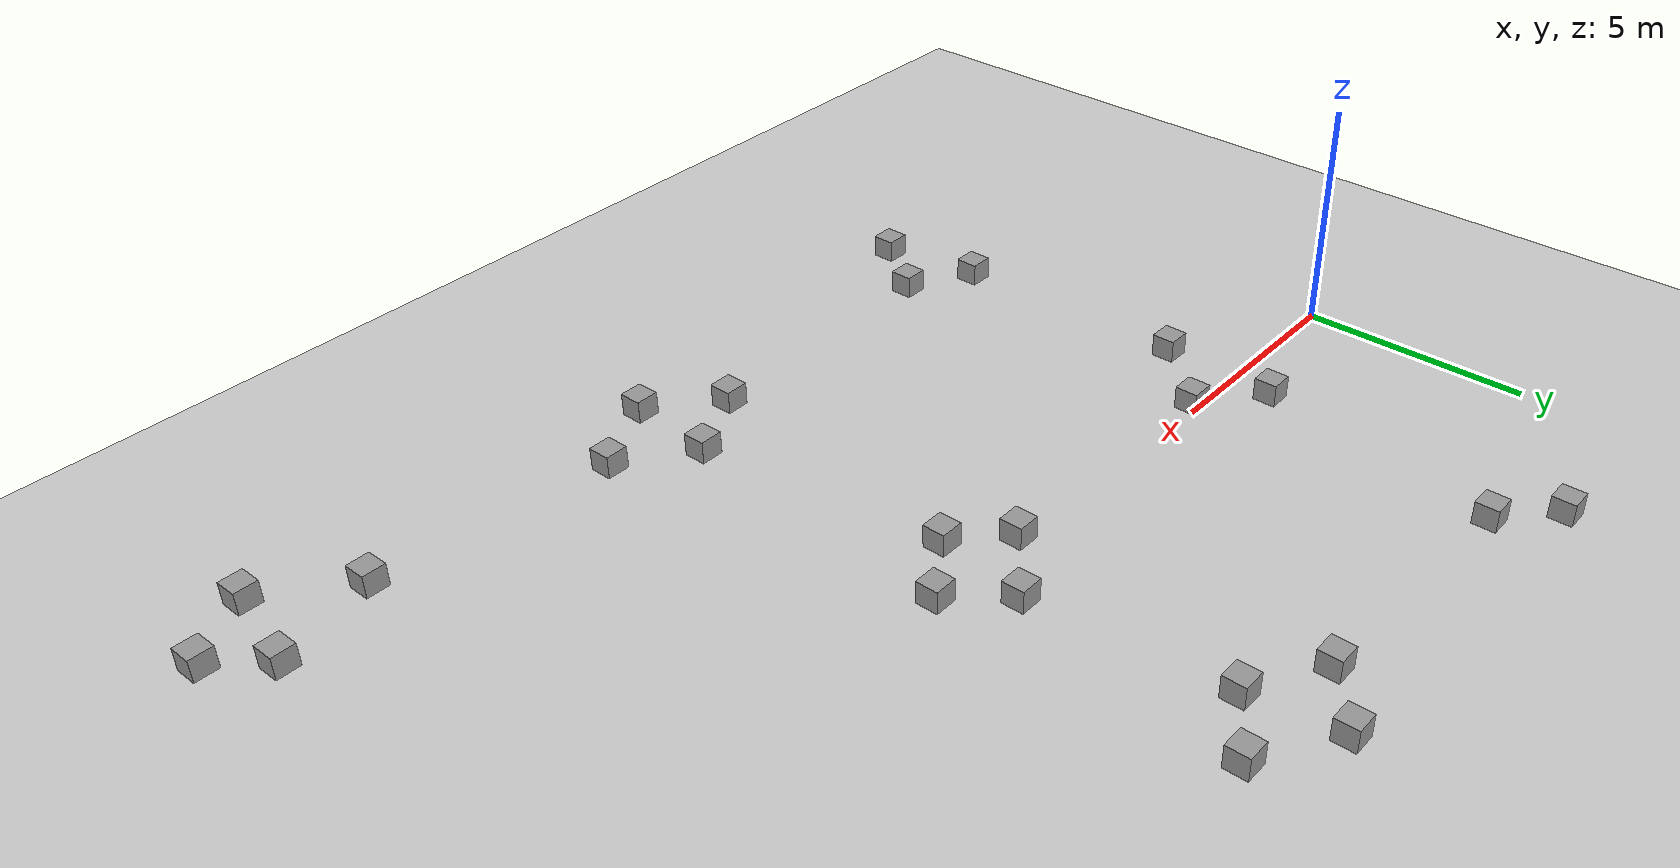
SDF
<sdf version="1.6">
 <world name="default">
  <model name="ground_plane">
   <static>1</static>
   <link name="link">
    <collision name="collision">
     <geometry><plane><normal>0 0 1</normal><size>100 100</size></plane></geometry>
     <surface>
      <contact><collide_bitmask>65535</collide_bitmask></contact>
      <friction><ode><mu>100</mu><mu2>50</mu2></ode></friction>
     </surface>
    </collision>
    <visual name="visual">
     <cast_shadows>0</cast_shadows>
     <geometry><plane><normal>0 0 1</normal><size>100 100</size></plane></geometry>
     <material>
      <script><uri>file://media/materials/scripts/gazebo.material</uri><name>Gazebo/Grey</name></script>
     </material>
    </visual>
   </link>
  </model>
  <model name="Untitled">
   <link name="link_0">
    <inertial>
     <mass>1</mass>
     <inertia>
      <ixx>0.166667</ixx>
      <ixy>0</ixy>
      <ixz>0</ixz>
      <iyy>0.166667</iyy>
      <iyz>0</iyz>
      <izz>0.166667</izz>
     </inertia>
    </inertial>
    <visual name="visual">
     <geometry><box><size>0.5 0.5 0.5</size></box></geometry>
     <material>
      <lighting>1</lighting>
      <script><uri>file://media/materials/scripts/gazebo.material</uri><name>Gazebo/Grey</name></script>
      <shader type="vertex"><normal_map>__default__</normal_map></shader>
      <ambient>0 0 0 1</ambient>
      <diffuse>0 0 0 1</diffuse>
      <specular>0 0 0 1</specular>
      <emissive>0 0 0 1</emissive>
     </material>
    </visual>
    <collision name="collision">
     <geometry><box><size>0.5 0.5 0.5</size></box></geometry>
     <surface>
      <friction>
       <ode><mu>1</mu><mu2>1</mu2><fdir1>0 0 0</fdir1><slip1>0</slip1><slip2>0</slip2></ode>
       <torsional>
        <coefficient>1</coefficient>
        <patch_radius>0</patch_radius>
        <surface_radius>0</surface_radius>
        <use_patch_radius>1</use_patch_radius>
        <ode><slip>0</slip></ode>
       </torsional>
      </friction>
      <bounce><restitution_coefficient>0</restitution_coefficient><threshold>1e+06</threshold></bounce>
      <contact>
       <collide_without_contact>0</collide_without_contact>
       <collide_without_contact_bitmask>1</collide_without_contact_bitmask>
       <collide_bitmask>1</collide_bitmask>
       <ode>
        <soft_cfm>0</soft_cfm>
        <soft_erp>0.2</soft_erp>
        <kp>1e+13</kp>
        <kd>1</kd>
        <max_vel>0.01</max_vel>
        <min_depth>0</min_depth>
       </ode>
       <bullet>
        <split_impulse>1</split_impulse>
        <split_impulse_penetration_threshold>-0.01</split_impulse_penetration_threshold>
        <soft_cfm>0</soft_cfm>
        <soft_erp>0.2</soft_erp>
        <kp>1e+13</kp>
        <kd>1</kd>
       </bullet>
      </contact>
     </surface>
    </collision>
   </link>
   <static>0</static>
   <pose>10.8528 -0.084213 0.5 0 -0 0</pose>
  </model>
  <model name="Untitled_clone">
   <link name="link_0">
    <inertial>
     <mass>1</mass>
     <inertia>
      <ixx>0.166667</ixx>
      <ixy>0</ixy>
      <ixz>0</ixz>
      <iyy>0.166667</iyy>
      <iyz>0</iyz>
      <izz>0.166667</izz>
     </inertia>
    </inertial>
    <visual name="visual">
     <geometry><box><size>0.5 0.5 0.5</size></box></geometry>
     <material>
      <lighting>1</lighting>
      <script><uri>file://media/materials/scripts/gazebo.material</uri><name>Gazebo/Grey</name></script>
      <shader type="vertex"><normal_map>__default__</normal_map></shader>
      <ambient>0 0 0 1</ambient>
      <diffuse>0 0 0 1</diffuse>
      <specular>0 0 0 1</specular>
      <emissive>0 0 0 1</emissive>
     </material>
    </visual>
    <collision name="collision">
     <geometry><box><size>0.5 0.5 0.5</size></box></geometry>
     <surface>
      <friction>
       <ode><mu>1</mu><mu2>1</mu2><fdir1>0 0 0</fdir1><slip1>0</slip1><slip2>0</slip2></ode>
       <torsional>
        <coefficient>1</coefficient>
        <patch_radius>0</patch_radius>
        <surface_radius>0</surface_radius>
        <use_patch_radius>1</use_patch_radius>
        <ode><slip>0</slip></ode>
       </torsional>
      </friction>
      <bounce><restitution_coefficient>0</restitution_coefficient><threshold>1e+06</threshold></bounce>
      <contact>
       <collide_without_contact>0</collide_without_contact>
       <collide_without_contact_bitmask>1</collide_without_contact_bitmask>
       <collide_bitmask>1</collide_bitmask>
       <ode>
        <soft_cfm>0</soft_cfm>
        <soft_erp>0.2</soft_erp>
        <kp>1e+13</kp>
        <kd>1</kd>
        <max_vel>0.01</max_vel>
        <min_depth>0</min_depth>
       </ode>
       <bullet>
        <split_impulse>1</split_impulse>
        <split_impulse_penetration_threshold>-0.01</split_impulse_penetration_threshold>
        <soft_cfm>0</soft_cfm>
        <soft_erp>0.2</soft_erp>
        <kp>1e+13</kp>
        <kd>1</kd>
       </bullet>
      </contact>
     </surface>
    </collision>
   </link>
   <static>0</static>
   <pose>13.1905 -0.141175 0.5 0 -0 0</pose>
  </model>
  <model name="Untitled_clone_0">
   <link name="link_0">
    <inertial>
     <mass>1</mass>
     <inertia>
      <ixx>0.166667</ixx>
      <ixy>0</ixy>
      <ixz>0</ixz>
      <iyy>0.166667</iyy>
      <iyz>0</iyz>
      <izz>0.166667</izz>
     </inertia>
    </inertial>
    <visual name="visual">
     <geometry><box><size>0.5 0.5 0.5</size></box></geometry>
     <material>
      <lighting>1</lighting>
      <script><uri>file://media/materials/scripts/gazebo.material</uri><name>Gazebo/Grey</name></script>
      <shader type="vertex"><normal_map>__default__</normal_map></shader>
      <ambient>0 0 0 1</ambient>
      <diffuse>0 0 0 1</diffuse>
      <specular>0 0 0 1</specular>
      <emissive>0 0 0 1</emissive>
     </material>
    </visual>
    <collision name="collision">
     <geometry><box><size>0.5 0.5 0.5</size></box></geometry>
     <surface>
      <friction>
       <ode><mu>1</mu><mu2>1</mu2><fdir1>0 0 0</fdir1><slip1>0</slip1><slip2>0</slip2></ode>
       <torsional>
        <coefficient>1</coefficient>
        <patch_radius>0</patch_radius>
        <surface_radius>0</surface_radius>
        <use_patch_radius>1</use_patch_radius>
        <ode><slip>0</slip></ode>
       </torsional>
      </friction>
      <bounce><restitution_coefficient>0</restitution_coefficient><threshold>1e+06</threshold></bounce>
      <contact>
       <collide_without_contact>0</collide_without_contact>
       <collide_without_contact_bitmask>1</collide_without_contact_bitmask>
       <collide_bitmask>1</collide_bitmask>
       <ode>
        <soft_cfm>0</soft_cfm>
        <soft_erp>0.2</soft_erp>
        <kp>1e+13</kp>
        <kd>1</kd>
        <max_vel>0.01</max_vel>
        <min_depth>0</min_depth>
       </ode>
       <bullet>
        <split_impulse>1</split_impulse>
        <split_impulse_penetration_threshold>-0.01</split_impulse_penetration_threshold>
        <soft_cfm>0</soft_cfm>
        <soft_erp>0.2</soft_erp>
        <kp>1e+13</kp>
        <kd>1</kd>
       </bullet>
      </contact>
     </surface>
    </collision>
   </link>
   <static>0</static>
   <pose>10.2627 6.17219 0.5 0 -0 0</pose>
  </model>
  <model name="Untitled_clone_1">
   <link name="link_0">
    <inertial>
     <mass>1</mass>
     <inertia>
      <ixx>0.166667</ixx>
      <ixy>0</ixy>
      <ixz>0</ixz>
      <iyy>0.166667</iyy>
      <iyz>0</iyz>
      <izz>0.166667</izz>
     </inertia>
    </inertial>
    <visual name="visual">
     <geometry><box><size>0.5 0.5 0.5</size></box></geometry>
     <material>
      <lighting>1</lighting>
      <script><uri>file://media/materials/scripts/gazebo.material</uri><name>Gazebo/Grey</name></script>
      <shader type="vertex"><normal_map>__default__</normal_map></shader>
      <ambient>0 0 0 1</ambient>
      <diffuse>0 0 0 1</diffuse>
      <specular>0 0 0 1</specular>
      <emissive>0 0 0 1</emissive>
     </material>
    </visual>
    <collision name="collision">
     <geometry><box><size>0.5 0.5 0.5</size></box></geometry>
     <surface>
      <friction>
       <ode><mu>1</mu><mu2>1</mu2><fdir1>0 0 0</fdir1><slip1>0</slip1><slip2>0</slip2></ode>
       <torsional>
        <coefficient>1</coefficient>
        <patch_radius>0</patch_radius>
        <surface_radius>0</surface_radius>
        <use_patch_radius>1</use_patch_radius>
        <ode><slip>0</slip></ode>
       </torsional>
      </friction>
      <bounce><restitution_coefficient>0</restitution_coefficient><threshold>1e+06</threshold></bounce>
      <contact>
       <collide_without_contact>0</collide_without_contact>
       <collide_without_contact_bitmask>1</collide_without_contact_bitmask>
       <collide_bitmask>1</collide_bitmask>
       <ode>
        <soft_cfm>0</soft_cfm>
        <soft_erp>0.2</soft_erp>
        <kp>1e+13</kp>
        <kd>1</kd>
        <max_vel>0.01</max_vel>
        <min_depth>0</min_depth>
       </ode>
       <bullet>
        <split_impulse>1</split_impulse>
        <split_impulse_penetration_threshold>-0.01</split_impulse_penetration_threshold>
        <soft_cfm>0</soft_cfm>
        <soft_erp>0.2</soft_erp>
        <kp>1e+13</kp>
        <kd>1</kd>
       </bullet>
      </contact>
     </surface>
    </collision>
   </link>
   <static>0</static>
   <pose>13.128 6.13727 0.5 0 -0 0</pose>
  </model>
  <model name="Untitled_clone_2">
   <link name="link_0">
    <inertial>
     <mass>1</mass>
     <inertia>
      <ixx>0.166667</ixx>
      <ixy>0</ixy>
      <ixz>0</ixz>
      <iyy>0.166667</iyy>
      <iyz>0</iyz>
      <izz>0.166667</izz>
     </inertia>
    </inertial>
    <visual name="visual">
     <geometry><box><size>0.5 0.5 0.5</size></box></geometry>
     <material>
      <lighting>1</lighting>
      <script><uri>file://media/materials/scripts/gazebo.material</uri><name>Gazebo/Grey</name></script>
      <shader type="vertex"><normal_map>__default__</normal_map></shader>
      <ambient>0 0 0 1</ambient>
      <diffuse>0 0 0 1</diffuse>
      <specular>0 0 0 1</specular>
      <emissive>0 0 0 1</emissive>
     </material>
    </visual>
    <collision name="collision">
     <geometry><box><size>0.5 0.5 0.5</size></box></geometry>
     <surface>
      <friction>
       <ode><mu>1</mu><mu2>1</mu2><fdir1>0 0 0</fdir1><slip1>0</slip1><slip2>0</slip2></ode>
       <torsional>
        <coefficient>1</coefficient>
        <patch_radius>0</patch_radius>
        <surface_radius>0</surface_radius>
        <use_patch_radius>1</use_patch_radius>
        <ode><slip>0</slip></ode>
       </torsional>
      </friction>
      <bounce><restitution_coefficient>0</restitution_coefficient><threshold>1e+06</threshold></bounce>
      <contact>
       <collide_without_contact>0</collide_without_contact>
       <collide_without_contact_bitmask>1</collide_without_contact_bitmask>
       <collide_bitmask>1</collide_bitmask>
       <ode>
        <soft_cfm>0</soft_cfm>
        <soft_erp>0.2</soft_erp>
        <kp>1e+13</kp>
        <kd>1</kd>
        <max_vel>0.01</max_vel>
        <min_depth>0</min_depth>
       </ode>
       <bullet>
        <split_impulse>1</split_impulse>
        <split_impulse_penetration_threshold>-0.01</split_impulse_penetration_threshold>
        <soft_cfm>0</soft_cfm>
        <soft_erp>0.2</soft_erp>
        <kp>1e+13</kp>
        <kd>1</kd>
       </bullet>
      </contact>
     </surface>
    </collision>
   </link>
   <static>0</static>
   <pose>11.8135 5.26658 0.5 0 -0 0</pose>
  </model>
  <model name="Untitled_clone_3">
   <link name="link_0">
    <inertial>
     <mass>1</mass>
     <inertia>
      <ixx>0.166667</ixx>
      <ixy>0</ixy>
      <ixz>0</ixz>
      <iyy>0.166667</iyy>
      <iyz>0</iyz>
      <izz>0.166667</izz>
     </inertia>
    </inertial>
    <visual name="visual">
     <geometry><box><size>0.5 0.5 0.5</size></box></geometry>
     <material>
      <lighting>1</lighting>
      <script><uri>file://media/materials/scripts/gazebo.material</uri><name>Gazebo/Grey</name></script>
      <shader type="vertex"><normal_map>__default__</normal_map></shader>
      <ambient>0 0 0 1</ambient>
      <diffuse>0 0 0 1</diffuse>
      <specular>0 0 0 1</specular>
      <emissive>0 0 0 1</emissive>
     </material>
    </visual>
    <collision name="collision">
     <geometry><box><size>0.5 0.5 0.5</size></box></geometry>
     <surface>
      <friction>
       <ode><mu>1</mu><mu2>1</mu2><fdir1>0 0 0</fdir1><slip1>0</slip1><slip2>0</slip2></ode>
       <torsional>
        <coefficient>1</coefficient>
        <patch_radius>0</patch_radius>
        <surface_radius>0</surface_radius>
        <use_patch_radius>1</use_patch_radius>
        <ode><slip>0</slip></ode>
       </torsional>
      </friction>
      <bounce><restitution_coefficient>0</restitution_coefficient><threshold>1e+06</threshold></bounce>
      <contact>
       <collide_without_contact>0</collide_without_contact>
       <collide_without_contact_bitmask>1</collide_without_contact_bitmask>
       <collide_bitmask>1</collide_bitmask>
       <ode>
        <soft_cfm>0</soft_cfm>
        <soft_erp>0.2</soft_erp>
        <kp>1e+13</kp>
        <kd>1</kd>
        <max_vel>0.01</max_vel>
        <min_depth>0</min_depth>
       </ode>
       <bullet>
        <split_impulse>1</split_impulse>
        <split_impulse_penetration_threshold>-0.01</split_impulse_penetration_threshold>
        <soft_cfm>0</soft_cfm>
        <soft_erp>0.2</soft_erp>
        <kp>1e+13</kp>
        <kd>1</kd>
       </bullet>
      </contact>
     </surface>
    </collision>
   </link>
   <static>0</static>
   <pose>11.5114 7.16347 0.5 0 -0 0</pose>
  </model>
  <model name="Untitled_clone_4">
   <link name="link_0">
    <inertial>
     <mass>1</mass>
     <inertia>
      <ixx>0.166667</ixx>
      <ixy>0</ixy>
      <ixz>0</ixz>
      <iyy>0.166667</iyy>
      <iyz>0</iyz>
      <izz>0.166667</izz>
     </inertia>
    </inertial>
    <visual name="visual">
     <geometry><box><size>0.5 0.5 0.5</size></box></geometry>
     <material>
      <lighting>1</lighting>
      <script><uri>file://media/materials/scripts/gazebo.material</uri><name>Gazebo/Grey</name></script>
      <shader type="vertex"><normal_map>__default__</normal_map></shader>
      <ambient>0 0 0 1</ambient>
      <diffuse>0 0 0 1</diffuse>
      <specular>0 0 0 1</specular>
      <emissive>0 0 0 1</emissive>
     </material>
    </visual>
    <collision name="collision">
     <geometry><box><size>0.5 0.5 0.5</size></box></geometry>
     <surface>
      <friction>
       <ode><mu>1</mu><mu2>1</mu2><fdir1>0 0 0</fdir1><slip1>0</slip1><slip2>0</slip2></ode>
       <torsional>
        <coefficient>1</coefficient>
        <patch_radius>0</patch_radius>
        <surface_radius>0</surface_radius>
        <use_patch_radius>1</use_patch_radius>
        <ode><slip>0</slip></ode>
       </torsional>
      </friction>
      <bounce><restitution_coefficient>0</restitution_coefficient><threshold>1e+06</threshold></bounce>
      <contact>
       <collide_without_contact>0</collide_without_contact>
       <collide_without_contact_bitmask>1</collide_without_contact_bitmask>
       <collide_bitmask>1</collide_bitmask>
       <ode>
        <soft_cfm>0</soft_cfm>
        <soft_erp>0.2</soft_erp>
        <kp>1e+13</kp>
        <kd>1</kd>
        <max_vel>0.01</max_vel>
        <min_depth>0</min_depth>
       </ode>
       <bullet>
        <split_impulse>1</split_impulse>
        <split_impulse_penetration_threshold>-0.01</split_impulse_penetration_threshold>
        <soft_cfm>0</soft_cfm>
        <soft_erp>0.2</soft_erp>
        <kp>1e+13</kp>
        <kd>1</kd>
       </bullet>
      </contact>
     </surface>
    </collision>
   </link>
   <static>0</static>
   <pose>12.2257 1.01974 0.5 0 -0 0</pose>
  </model>
  <model name="Untitled_clone_5">
   <link name="link_0">
    <inertial>
     <mass>1</mass>
     <inertia>
      <ixx>0.166667</ixx>
      <ixy>0</ixy>
      <ixz>0</ixz>
      <iyy>0.166667</iyy>
      <iyz>0</iyz>
      <izz>0.166667</izz>
     </inertia>
    </inertial>
    <visual name="visual">
     <geometry><box><size>0.5 0.5 0.5</size></box></geometry>
     <material>
      <lighting>1</lighting>
      <script><uri>file://media/materials/scripts/gazebo.material</uri><name>Gazebo/Grey</name></script>
      <shader type="vertex"><normal_map>__default__</normal_map></shader>
      <ambient>0 0 0 1</ambient>
      <diffuse>0 0 0 1</diffuse>
      <specular>0 0 0 1</specular>
      <emissive>0 0 0 1</emissive>
     </material>
    </visual>
    <collision name="collision">
     <geometry><box><size>0.5 0.5 0.5</size></box></geometry>
     <surface>
      <friction>
       <ode><mu>1</mu><mu2>1</mu2><fdir1>0 0 0</fdir1><slip1>0</slip1><slip2>0</slip2></ode>
       <torsional>
        <coefficient>1</coefficient>
        <patch_radius>0</patch_radius>
        <surface_radius>0</surface_radius>
        <use_patch_radius>1</use_patch_radius>
        <ode><slip>0</slip></ode>
       </torsional>
      </friction>
      <bounce><restitution_coefficient>0</restitution_coefficient><threshold>1e+06</threshold></bounce>
      <contact>
       <collide_without_contact>0</collide_without_contact>
       <collide_without_contact_bitmask>1</collide_without_contact_bitmask>
       <collide_bitmask>1</collide_bitmask>
       <ode>
        <soft_cfm>0</soft_cfm>
        <soft_erp>0.2</soft_erp>
        <kp>1e+13</kp>
        <kd>1</kd>
        <max_vel>0.01</max_vel>
        <min_depth>0</min_depth>
       </ode>
       <bullet>
        <split_impulse>1</split_impulse>
        <split_impulse_penetration_threshold>-0.01</split_impulse_penetration_threshold>
        <soft_cfm>0</soft_cfm>
        <soft_erp>0.2</soft_erp>
        <kp>1e+13</kp>
        <kd>1</kd>
       </bullet>
      </contact>
     </surface>
    </collision>
   </link>
   <static>0</static>
   <pose>11.8991 -1.05579 0.5 0 -0 0</pose>
  </model>
  <model name="Untitled_clone_6">
   <link name="link_0">
    <inertial>
     <mass>1</mass>
     <inertia>
      <ixx>0.166667</ixx>
      <ixy>0</ixy>
      <ixz>0</ixz>
      <iyy>0.166667</iyy>
      <iyz>0</iyz>
      <izz>0.166667</izz>
     </inertia>
    </inertial>
    <visual name="visual">
     <geometry><box><size>0.5 0.5 0.5</size></box></geometry>
     <material>
      <lighting>1</lighting>
      <script><uri>file://media/materials/scripts/gazebo.material</uri><name>Gazebo/Grey</name></script>
      <shader type="vertex"><normal_map>__default__</normal_map></shader>
      <ambient>0 0 0 1</ambient>
      <diffuse>0 0 0 1</diffuse>
      <specular>0 0 0 1</specular>
      <emissive>0 0 0 1</emissive>
     </material>
    </visual>
    <collision name="collision">
     <geometry><box><size>0.5 0.5 0.5</size></box></geometry>
     <surface>
      <friction>
       <ode><mu>1</mu><mu2>1</mu2><fdir1>0 0 0</fdir1><slip1>0</slip1><slip2>0</slip2></ode>
       <torsional>
        <coefficient>1</coefficient>
        <patch_radius>0</patch_radius>
        <surface_radius>0</surface_radius>
        <use_patch_radius>1</use_patch_radius>
        <ode><slip>0</slip></ode>
       </torsional>
      </friction>
      <bounce><restitution_coefficient>0</restitution_coefficient><threshold>1e+06</threshold></bounce>
      <contact>
       <collide_without_contact>0</collide_without_contact>
       <collide_without_contact_bitmask>1</collide_without_contact_bitmask>
       <collide_bitmask>1</collide_bitmask>
       <ode>
        <soft_cfm>0</soft_cfm>
        <soft_erp>0.2</soft_erp>
        <kp>1e+13</kp>
        <kd>1</kd>
        <max_vel>0.01</max_vel>
        <min_depth>0</min_depth>
       </ode>
       <bullet>
        <split_impulse>1</split_impulse>
        <split_impulse_penetration_threshold>-0.01</split_impulse_penetration_threshold>
        <soft_cfm>0</soft_cfm>
        <soft_erp>0.2</soft_erp>
        <kp>1e+13</kp>
        <kd>1</kd>
       </bullet>
      </contact>
     </surface>
    </collision>
   </link>
   <static>0</static>
   <pose>4.82674 6.4518 0.5 0 -0 0</pose>
  </model>
  <model name="Untitled_clone_8">
   <link name="link_0">
    <inertial>
     <mass>1</mass>
     <inertia>
      <ixx>0.166667</ixx>
      <ixy>0</ixy>
      <ixz>0</ixz>
      <iyy>0.166667</iyy>
      <iyz>0</iyz>
      <izz>0.166667</izz>
     </inertia>
    </inertial>
    <visual name="visual">
     <geometry><box><size>0.5 0.5 0.5</size></box></geometry>
     <material>
      <lighting>1</lighting>
      <script><uri>file://media/materials/scripts/gazebo.material</uri><name>Gazebo/Grey</name></script>
      <shader type="vertex"><normal_map>__default__</normal_map></shader>
      <ambient>0 0 0 1</ambient>
      <diffuse>0 0 0 1</diffuse>
      <specular>0 0 0 1</specular>
      <emissive>0 0 0 1</emissive>
     </material>
    </visual>
    <collision name="collision">
     <geometry><box><size>0.5 0.5 0.5</size></box></geometry>
     <surface>
      <friction>
       <ode><mu>1</mu><mu2>1</mu2><fdir1>0 0 0</fdir1><slip1>0</slip1><slip2>0</slip2></ode>
       <torsional>
        <coefficient>1</coefficient>
        <patch_radius>0</patch_radius>
        <surface_radius>0</surface_radius>
        <use_patch_radius>1</use_patch_radius>
        <ode><slip>0</slip></ode>
       </torsional>
      </friction>
      <bounce><restitution_coefficient>0</restitution_coefficient><threshold>1e+06</threshold></bounce>
      <contact>
       <collide_without_contact>0</collide_without_contact>
       <collide_without_contact_bitmask>1</collide_without_contact_bitmask>
       <collide_bitmask>1</collide_bitmask>
       <ode>
        <soft_cfm>0</soft_cfm>
        <soft_erp>0.2</soft_erp>
        <kp>1e+13</kp>
        <kd>1</kd>
        <max_vel>0.01</max_vel>
        <min_depth>0</min_depth>
       </ode>
       <bullet>
        <split_impulse>1</split_impulse>
        <split_impulse_penetration_threshold>-0.01</split_impulse_penetration_threshold>
        <soft_cfm>0</soft_cfm>
        <soft_erp>0.2</soft_erp>
        <kp>1e+13</kp>
        <kd>1</kd>
       </bullet>
      </contact>
     </surface>
    </collision>
   </link>
   <static>0</static>
   <pose>3.74861 7.48304 0.5 0 -0 0</pose>
  </model>
  <model name="Untitled_clone_10">
   <link name="link_0">
    <inertial>
     <mass>1</mass>
     <inertia>
      <ixx>0.166667</ixx>
      <ixy>0</ixy>
      <ixz>0</ixz>
      <iyy>0.166667</iyy>
      <iyz>0</iyz>
      <izz>0.166667</izz>
     </inertia>
    </inertial>
    <visual name="visual">
     <geometry><box><size>0.5 0.5 0.5</size></box></geometry>
     <material>
      <lighting>1</lighting>
      <script><uri>file://media/materials/scripts/gazebo.material</uri><name>Gazebo/Grey</name></script>
      <shader type="vertex"><normal_map>__default__</normal_map></shader>
      <ambient>0 0 0 1</ambient>
      <diffuse>0 0 0 1</diffuse>
      <specular>0 0 0 1</specular>
      <emissive>0 0 0 1</emissive>
     </material>
    </visual>
    <collision name="collision">
     <geometry><box><size>0.5 0.5 0.5</size></box></geometry>
     <surface>
      <friction>
       <ode><mu>1</mu><mu2>1</mu2><fdir1>0 0 0</fdir1><slip1>0</slip1><slip2>0</slip2></ode>
       <torsional>
        <coefficient>1</coefficient>
        <patch_radius>0</patch_radius>
        <surface_radius>0</surface_radius>
        <use_patch_radius>1</use_patch_radius>
        <ode><slip>0</slip></ode>
       </torsional>
      </friction>
      <bounce><restitution_coefficient>0</restitution_coefficient><threshold>1e+06</threshold></bounce>
      <contact>
       <collide_without_contact>0</collide_without_contact>
       <collide_without_contact_bitmask>1</collide_without_contact_bitmask>
       <collide_bitmask>1</collide_bitmask>
       <ode>
        <soft_cfm>0</soft_cfm>
        <soft_erp>0.2</soft_erp>
        <kp>1e+13</kp>
        <kd>1</kd>
        <max_vel>0.01</max_vel>
        <min_depth>0</min_depth>
       </ode>
       <bullet>
        <split_impulse>1</split_impulse>
        <split_impulse_penetration_threshold>-0.01</split_impulse_penetration_threshold>
        <soft_cfm>0</soft_cfm>
        <soft_erp>0.2</soft_erp>
        <kp>1e+13</kp>
        <kd>1</kd>
       </bullet>
      </contact>
     </surface>
    </collision>
   </link>
   <static>0</static>
   <pose>5.13319 0.039644 0.5 0 -0 0</pose>
  </model>
  <model name="Untitled_clone_12">
   <link name="link_0">
    <inertial>
     <mass>1</mass>
     <inertia>
      <ixx>0.166667</ixx>
      <ixy>0</ixy>
      <ixz>0</ixz>
      <iyy>0.166667</iyy>
      <iyz>0</iyz>
      <izz>0.166667</izz>
     </inertia>
    </inertial>
    <visual name="visual">
     <geometry><box><size>0.5 0.5 0.5</size></box></geometry>
     <material>
      <lighting>1</lighting>
      <script><uri>file://media/materials/scripts/gazebo.material</uri><name>Gazebo/Grey</name></script>
      <shader type="vertex"><normal_map>__default__</normal_map></shader>
      <ambient>0 0 0 1</ambient>
      <diffuse>0 0 0 1</diffuse>
      <specular>0 0 0 1</specular>
      <emissive>0 0 0 1</emissive>
     </material>
    </visual>
    <collision name="collision">
     <geometry><box><size>0.5 0.5 0.5</size></box></geometry>
     <surface>
      <friction>
       <ode><mu>1</mu><mu2>1</mu2><fdir1>0 0 0</fdir1><slip1>0</slip1><slip2>0</slip2></ode>
       <torsional>
        <coefficient>1</coefficient>
        <patch_radius>0</patch_radius>
        <surface_radius>0</surface_radius>
        <use_patch_radius>1</use_patch_radius>
        <ode><slip>0</slip></ode>
       </torsional>
      </friction>
      <bounce><restitution_coefficient>0</restitution_coefficient><threshold>1e+06</threshold></bounce>
      <contact>
       <collide_without_contact>0</collide_without_contact>
       <collide_without_contact_bitmask>1</collide_without_contact_bitmask>
       <collide_bitmask>1</collide_bitmask>
       <ode>
        <soft_cfm>0</soft_cfm>
        <soft_erp>0.2</soft_erp>
        <kp>1e+13</kp>
        <kd>1</kd>
        <max_vel>0.01</max_vel>
        <min_depth>0</min_depth>
       </ode>
       <bullet>
        <split_impulse>1</split_impulse>
        <split_impulse_penetration_threshold>-0.01</split_impulse_penetration_threshold>
        <soft_cfm>0</soft_cfm>
        <soft_erp>0.2</soft_erp>
        <kp>1e+13</kp>
        <kd>1</kd>
       </bullet>
      </contact>
     </surface>
    </collision>
   </link>
   <static>0</static>
   <pose>3.82805 1.12256 0.5 0 -0 0</pose>
  </model>
  <model name="Untitled_clone_13">
   <link name="link_0">
    <inertial>
     <mass>1</mass>
     <inertia>
      <ixx>0.166667</ixx>
      <ixy>0</ixy>
      <ixz>0</ixz>
      <iyy>0.166667</iyy>
      <iyz>0</iyz>
      <izz>0.166667</izz>
     </inertia>
    </inertial>
    <visual name="visual">
     <geometry><box><size>0.5 0.5 0.5</size></box></geometry>
     <material>
      <lighting>1</lighting>
      <script><uri>file://media/materials/scripts/gazebo.material</uri><name>Gazebo/Grey</name></script>
      <shader type="vertex"><normal_map>__default__</normal_map></shader>
      <ambient>0 0 0 1</ambient>
      <diffuse>0 0 0 1</diffuse>
      <specular>0 0 0 1</specular>
      <emissive>0 0 0 1</emissive>
     </material>
    </visual>
    <collision name="collision">
     <geometry><box><size>0.5 0.5 0.5</size></box></geometry>
     <surface>
      <friction>
       <ode><mu>1</mu><mu2>1</mu2><fdir1>0 0 0</fdir1><slip1>0</slip1><slip2>0</slip2></ode>
       <torsional>
        <coefficient>1</coefficient>
        <patch_radius>0</patch_radius>
        <surface_radius>0</surface_radius>
        <use_patch_radius>1</use_patch_radius>
        <ode><slip>0</slip></ode>
       </torsional>
      </friction>
      <bounce><restitution_coefficient>0</restitution_coefficient><threshold>1e+06</threshold></bounce>
      <contact>
       <collide_without_contact>0</collide_without_contact>
       <collide_without_contact_bitmask>1</collide_without_contact_bitmask>
       <collide_bitmask>1</collide_bitmask>
       <ode>
        <soft_cfm>0</soft_cfm>
        <soft_erp>0.2</soft_erp>
        <kp>1e+13</kp>
        <kd>1</kd>
        <max_vel>0.01</max_vel>
        <min_depth>0</min_depth>
       </ode>
       <bullet>
        <split_impulse>1</split_impulse>
        <split_impulse_penetration_threshold>-0.01</split_impulse_penetration_threshold>
        <soft_cfm>0</soft_cfm>
        <soft_erp>0.2</soft_erp>
        <kp>1e+13</kp>
        <kd>1</kd>
       </bullet>
      </contact>
     </surface>
    </collision>
   </link>
   <static>0</static>
   <pose>3.74307 -1.43738 0.5 0 -0 0</pose>
  </model>
  <model name="Untitled_clone_28">
   <link name="link_0">
    <inertial>
     <mass>1</mass>
     <inertia>
      <ixx>0.166667</ixx>
      <ixy>0</ixy>
      <ixz>0</ixz>
      <iyy>0.166667</iyy>
      <iyz>0</iyz>
      <izz>0.166667</izz>
     </inertia>
    </inertial>
    <visual name="visual">
     <geometry><box><size>0.5 0.5 0.5</size></box></geometry>
     <material>
      <lighting>1</lighting>
      <script><uri>file://media/materials/scripts/gazebo.material</uri><name>Gazebo/Grey</name></script>
      <shader type="vertex"><normal_map>__default__</normal_map></shader>
      <ambient>0 0 0 1</ambient>
      <diffuse>0 0 0 1</diffuse>
      <specular>0 0 0 1</specular>
      <emissive>0 0 0 1</emissive>
     </material>
    </visual>
    <collision name="collision">
     <geometry><box><size>0.5 0.5 0.5</size></box></geometry>
     <surface>
      <friction>
       <ode><mu>1</mu><mu2>1</mu2><fdir1>0 0 0</fdir1><slip1>0</slip1><slip2>0</slip2></ode>
       <torsional>
        <coefficient>1</coefficient>
        <patch_radius>0</patch_radius>
        <surface_radius>0</surface_radius>
        <use_patch_radius>1</use_patch_radius>
        <ode><slip>0</slip></ode>
       </torsional>
      </friction>
      <bounce><restitution_coefficient>0</restitution_coefficient><threshold>1e+06</threshold></bounce>
      <contact>
       <collide_without_contact>0</collide_without_contact>
       <collide_without_contact_bitmask>1</collide_without_contact_bitmask>
       <collide_bitmask>1</collide_bitmask>
       <ode>
        <soft_cfm>0</soft_cfm>
        <soft_erp>0.2</soft_erp>
        <kp>1e+13</kp>
        <kd>1</kd>
        <max_vel>0.01</max_vel>
        <min_depth>0</min_depth>
       </ode>
       <bullet>
        <split_impulse>1</split_impulse>
        <split_impulse_penetration_threshold>-0.01</split_impulse_penetration_threshold>
        <soft_cfm>0</soft_cfm>
        <soft_erp>0.2</soft_erp>
        <kp>1e+13</kp>
        <kd>1</kd>
       </bullet>
      </contact>
     </surface>
    </collision>
   </link>
   <static>0</static>
   <pose>21.5061 -7.64658 0.5 0 -0 0</pose>
  </model>
  <model name="Untitled_clone_29">
   <link name="link_0">
    <inertial>
     <mass>1</mass>
     <inertia>
      <ixx>0.166667</ixx>
      <ixy>0</ixy>
      <ixz>0</ixz>
      <iyy>0.166667</iyy>
      <iyz>0</iyz>
      <izz>0.166667</izz>
     </inertia>
    </inertial>
    <visual name="visual">
     <geometry><box><size>0.5 0.5 0.5</size></box></geometry>
     <material>
      <lighting>1</lighting>
      <script><uri>file://media/materials/scripts/gazebo.material</uri><name>Gazebo/Grey</name></script>
      <shader type="vertex"><normal_map>__default__</normal_map></shader>
      <ambient>0 0 0 1</ambient>
      <diffuse>0 0 0 1</diffuse>
      <specular>0 0 0 1</specular>
      <emissive>0 0 0 1</emissive>
     </material>
    </visual>
    <collision name="collision">
     <geometry><box><size>0.5 0.5 0.5</size></box></geometry>
     <surface>
      <friction>
       <ode><mu>1</mu><mu2>1</mu2><fdir1>0 0 0</fdir1><slip1>0</slip1><slip2>0</slip2></ode>
       <torsional>
        <coefficient>1</coefficient>
        <patch_radius>0</patch_radius>
        <surface_radius>0</surface_radius>
        <use_patch_radius>1</use_patch_radius>
        <ode><slip>0</slip></ode>
       </torsional>
      </friction>
      <bounce><restitution_coefficient>0</restitution_coefficient><threshold>1e+06</threshold></bounce>
      <contact>
       <collide_without_contact>0</collide_without_contact>
       <collide_without_contact_bitmask>1</collide_without_contact_bitmask>
       <collide_bitmask>1</collide_bitmask>
       <ode>
        <soft_cfm>0</soft_cfm>
        <soft_erp>0.2</soft_erp>
        <kp>1e+13</kp>
        <kd>1</kd>
        <max_vel>0.01</max_vel>
        <min_depth>0</min_depth>
       </ode>
       <bullet>
        <split_impulse>1</split_impulse>
        <split_impulse_penetration_threshold>-0.01</split_impulse_penetration_threshold>
        <soft_cfm>0</soft_cfm>
        <soft_erp>0.2</soft_erp>
        <kp>1e+13</kp>
        <kd>1</kd>
       </bullet>
      </contact>
     </surface>
    </collision>
   </link>
   <static>0</static>
   <pose>22.4165 -8.65388 0.5 0 -0 0</pose>
  </model>
  <model name="Untitled_clone_30">
   <link name="link_0">
    <inertial>
     <mass>1</mass>
     <inertia>
      <ixx>0.166667</ixx>
      <ixy>0</ixy>
      <ixz>0</ixz>
      <iyy>0.166667</iyy>
      <iyz>0</iyz>
      <izz>0.166667</izz>
     </inertia>
    </inertial>
    <visual name="visual">
     <geometry><box><size>0.5 0.5 0.5</size></box></geometry>
     <material>
      <lighting>1</lighting>
      <script><uri>file://media/materials/scripts/gazebo.material</uri><name>Gazebo/Grey</name></script>
      <shader type="vertex"><normal_map>__default__</normal_map></shader>
      <ambient>0 0 0 1</ambient>
      <diffuse>0 0 0 1</diffuse>
      <specular>0 0 0 1</specular>
      <emissive>0 0 0 1</emissive>
     </material>
    </visual>
    <collision name="collision">
     <geometry><box><size>0.5 0.5 0.5</size></box></geometry>
     <surface>
      <friction>
       <ode><mu>1</mu><mu2>1</mu2><fdir1>0 0 0</fdir1><slip1>0</slip1><slip2>0</slip2></ode>
       <torsional>
        <coefficient>1</coefficient>
        <patch_radius>0</patch_radius>
        <surface_radius>0</surface_radius>
        <use_patch_radius>1</use_patch_radius>
        <ode><slip>0</slip></ode>
       </torsional>
      </friction>
      <bounce><restitution_coefficient>0</restitution_coefficient><threshold>1e+06</threshold></bounce>
      <contact>
       <collide_without_contact>0</collide_without_contact>
       <collide_without_contact_bitmask>1</collide_without_contact_bitmask>
       <collide_bitmask>1</collide_bitmask>
       <ode>
        <soft_cfm>0</soft_cfm>
        <soft_erp>0.2</soft_erp>
        <kp>1e+13</kp>
        <kd>1</kd>
        <max_vel>0.01</max_vel>
        <min_depth>0</min_depth>
       </ode>
       <bullet>
        <split_impulse>1</split_impulse>
        <split_impulse_penetration_threshold>-0.01</split_impulse_penetration_threshold>
        <soft_cfm>0</soft_cfm>
        <soft_erp>0.2</soft_erp>
        <kp>1e+13</kp>
        <kd>1</kd>
       </bullet>
      </contact>
     </surface>
    </collision>
   </link>
   <static>0</static>
   <pose>19.2954 -8.23951 0.5 0 -0 0</pose>
  </model>
  <model name="Untitled_clone_31">
   <link name="link_0">
    <inertial>
     <mass>1</mass>
     <inertia>
      <ixx>0.166667</ixx>
      <ixy>0</ixy>
      <ixz>0</ixz>
      <iyy>0.166667</iyy>
      <iyz>0</iyz>
      <izz>0.166667</izz>
     </inertia>
    </inertial>
    <visual name="visual">
     <geometry><box><size>0.5 0.5 0.5</size></box></geometry>
     <material>
      <lighting>1</lighting>
      <script><uri>file://media/materials/scripts/gazebo.material</uri><name>Gazebo/Grey</name></script>
      <shader type="vertex"><normal_map>__default__</normal_map></shader>
      <ambient>0 0 0 1</ambient>
      <diffuse>0 0 0 1</diffuse>
      <specular>0 0 0 1</specular>
      <emissive>0 0 0 1</emissive>
     </material>
    </visual>
    <collision name="collision">
     <geometry><box><size>0.5 0.5 0.5</size></box></geometry>
     <surface>
      <friction>
       <ode><mu>1</mu><mu2>1</mu2><fdir1>0 0 0</fdir1><slip1>0</slip1><slip2>0</slip2></ode>
       <torsional>
        <coefficient>1</coefficient>
        <patch_radius>0</patch_radius>
        <surface_radius>0</surface_radius>
        <use_patch_radius>1</use_patch_radius>
        <ode><slip>0</slip></ode>
       </torsional>
      </friction>
      <bounce><restitution_coefficient>0</restitution_coefficient><threshold>1e+06</threshold></bounce>
      <contact>
       <collide_without_contact>0</collide_without_contact>
       <collide_without_contact_bitmask>1</collide_without_contact_bitmask>
       <collide_bitmask>1</collide_bitmask>
       <ode>
        <soft_cfm>0</soft_cfm>
        <soft_erp>0.2</soft_erp>
        <kp>1e+13</kp>
        <kd>1</kd>
        <max_vel>0.01</max_vel>
        <min_depth>0</min_depth>
       </ode>
       <bullet>
        <split_impulse>1</split_impulse>
        <split_impulse_penetration_threshold>-0.01</split_impulse_penetration_threshold>
        <soft_cfm>0</soft_cfm>
        <soft_erp>0.2</soft_erp>
        <kp>1e+13</kp>
        <kd>1</kd>
       </bullet>
      </contact>
     </surface>
    </collision>
   </link>
   <static>0</static>
   <pose>20.9946 -9.58374 0.5 0 -0 0</pose>
  </model>
  <model name="Untitled_clone_32">
   <link name="link_0">
    <inertial>
     <mass>1</mass>
     <inertia>
      <ixx>0.166667</ixx>
      <ixy>0</ixy>
      <ixz>0</ixz>
      <iyy>0.166667</iyy>
      <iyz>0</iyz>
      <izz>0.166667</izz>
     </inertia>
    </inertial>
    <visual name="visual">
     <geometry><box><size>0.5 0.5 0.5</size></box></geometry>
     <material>
      <lighting>1</lighting>
      <script><uri>file://media/materials/scripts/gazebo.material</uri><name>Gazebo/Grey</name></script>
      <shader type="vertex"><normal_map>__default__</normal_map></shader>
      <ambient>0 0 0 1</ambient>
      <diffuse>0 0 0 1</diffuse>
      <specular>0 0 0 1</specular>
      <emissive>0 0 0 1</emissive>
     </material>
    </visual>
    <collision name="collision">
     <geometry><box><size>0.5 0.5 0.5</size></box></geometry>
     <surface>
      <friction>
       <ode><mu>1</mu><mu2>1</mu2><fdir1>0 0 0</fdir1><slip1>0</slip1><slip2>0</slip2></ode>
       <torsional>
        <coefficient>1</coefficient>
        <patch_radius>0</patch_radius>
        <surface_radius>0</surface_radius>
        <use_patch_radius>1</use_patch_radius>
        <ode><slip>0</slip></ode>
       </torsional>
      </friction>
      <bounce><restitution_coefficient>0</restitution_coefficient><threshold>1e+06</threshold></bounce>
      <contact>
       <collide_without_contact>0</collide_without_contact>
       <collide_without_contact_bitmask>1</collide_without_contact_bitmask>
       <collide_bitmask>1</collide_bitmask>
       <ode>
        <soft_cfm>0</soft_cfm>
        <soft_erp>0.2</soft_erp>
        <kp>1e+13</kp>
        <kd>1</kd>
        <max_vel>0.01</max_vel>
        <min_depth>0</min_depth>
       </ode>
       <bullet>
        <split_impulse>1</split_impulse>
        <split_impulse_penetration_threshold>-0.01</split_impulse_penetration_threshold>
        <soft_cfm>0</soft_cfm>
        <soft_erp>0.2</soft_erp>
        <kp>1e+13</kp>
        <kd>1</kd>
       </bullet>
      </contact>
     </surface>
    </collision>
   </link>
   <static>0</static>
   <pose>12.6774 -6.53554 0.5 0 -0 0</pose>
  </model>
  <model name="Untitled_clone_33">
   <link name="link_0">
    <inertial>
     <mass>1</mass>
     <inertia>
      <ixx>0.166667</ixx>
      <ixy>0</ixy>
      <ixz>0</ixz>
      <iyy>0.166667</iyy>
      <iyz>0</iyz>
      <izz>0.166667</izz>
     </inertia>
    </inertial>
    <visual name="visual">
     <geometry><box><size>0.5 0.5 0.5</size></box></geometry>
     <material>
      <lighting>1</lighting>
      <script><uri>file://media/materials/scripts/gazebo.material</uri><name>Gazebo/Grey</name></script>
      <shader type="vertex"><normal_map>__default__</normal_map></shader>
      <ambient>0 0 0 1</ambient>
      <diffuse>0 0 0 1</diffuse>
      <specular>0 0 0 1</specular>
      <emissive>0 0 0 1</emissive>
     </material>
    </visual>
    <collision name="collision">
     <geometry><box><size>0.5 0.5 0.5</size></box></geometry>
     <surface>
      <friction>
       <ode><mu>1</mu><mu2>1</mu2><fdir1>0 0 0</fdir1><slip1>0</slip1><slip2>0</slip2></ode>
       <torsional>
        <coefficient>1</coefficient>
        <patch_radius>0</patch_radius>
        <surface_radius>0</surface_radius>
        <use_patch_radius>1</use_patch_radius>
        <ode><slip>0</slip></ode>
       </torsional>
      </friction>
      <bounce><restitution_coefficient>0</restitution_coefficient><threshold>1e+06</threshold></bounce>
      <contact>
       <collide_without_contact>0</collide_without_contact>
       <collide_without_contact_bitmask>1</collide_without_contact_bitmask>
       <collide_bitmask>1</collide_bitmask>
       <ode>
        <soft_cfm>0</soft_cfm>
        <soft_erp>0.2</soft_erp>
        <kp>1e+13</kp>
        <kd>1</kd>
        <max_vel>0.01</max_vel>
        <min_depth>0</min_depth>
       </ode>
       <bullet>
        <split_impulse>1</split_impulse>
        <split_impulse_penetration_threshold>-0.01</split_impulse_penetration_threshold>
        <soft_cfm>0</soft_cfm>
        <soft_erp>0.2</soft_erp>
        <kp>1e+13</kp>
        <kd>1</kd>
       </bullet>
      </contact>
     </surface>
    </collision>
   </link>
   <static>0</static>
   <pose>14.1844 -7.60144 0.5 0 -0 0</pose>
  </model>
  <model name="Untitled_clone_34">
   <link name="link_0">
    <inertial>
     <mass>1</mass>
     <inertia>
      <ixx>0.166667</ixx>
      <ixy>0</ixy>
      <ixz>0</ixz>
      <iyy>0.166667</iyy>
      <iyz>0</iyz>
      <izz>0.166667</izz>
     </inertia>
    </inertial>
    <visual name="visual">
     <geometry><box><size>0.5 0.5 0.5</size></box></geometry>
     <material>
      <lighting>1</lighting>
      <script><uri>file://media/materials/scripts/gazebo.material</uri><name>Gazebo/Grey</name></script>
      <shader type="vertex"><normal_map>__default__</normal_map></shader>
      <ambient>0 0 0 1</ambient>
      <diffuse>0 0 0 1</diffuse>
      <specular>0 0 0 1</specular>
      <emissive>0 0 0 1</emissive>
     </material>
    </visual>
    <collision name="collision">
     <geometry><box><size>0.5 0.5 0.5</size></box></geometry>
     <surface>
      <friction>
       <ode><mu>1</mu><mu2>1</mu2><fdir1>0 0 0</fdir1><slip1>0</slip1><slip2>0</slip2></ode>
       <torsional>
        <coefficient>1</coefficient>
        <patch_radius>0</patch_radius>
        <surface_radius>0</surface_radius>
        <use_patch_radius>1</use_patch_radius>
        <ode><slip>0</slip></ode>
       </torsional>
      </friction>
      <bounce><restitution_coefficient>0</restitution_coefficient><threshold>1e+06</threshold></bounce>
      <contact>
       <collide_without_contact>0</collide_without_contact>
       <collide_without_contact_bitmask>1</collide_without_contact_bitmask>
       <collide_bitmask>1</collide_bitmask>
       <ode>
        <soft_cfm>0</soft_cfm>
        <soft_erp>0.2</soft_erp>
        <kp>1e+13</kp>
        <kd>1</kd>
        <max_vel>0.01</max_vel>
        <min_depth>0</min_depth>
       </ode>
       <bullet>
        <split_impulse>1</split_impulse>
        <split_impulse_penetration_threshold>-0.01</split_impulse_penetration_threshold>
        <soft_cfm>0</soft_cfm>
        <soft_erp>0.2</soft_erp>
        <kp>1e+13</kp>
        <kd>1</kd>
       </bullet>
      </contact>
     </surface>
    </collision>
   </link>
   <static>0</static>
   <pose>11.1258 -7.37959 0.5 0 -0 0</pose>
  </model>
  <model name="Untitled_clone_35">
   <link name="link_0">
    <inertial>
     <mass>1</mass>
     <inertia>
      <ixx>0.166667</ixx>
      <ixy>0</ixy>
      <ixz>0</ixz>
      <iyy>0.166667</iyy>
      <iyz>0</iyz>
      <izz>0.166667</izz>
     </inertia>
    </inertial>
    <visual name="visual">
     <geometry><box><size>0.5 0.5 0.5</size></box></geometry>
     <material>
      <lighting>1</lighting>
      <script><uri>file://media/materials/scripts/gazebo.material</uri><name>Gazebo/Grey</name></script>
      <shader type="vertex"><normal_map>__default__</normal_map></shader>
      <ambient>0 0 0 1</ambient>
      <diffuse>0 0 0 1</diffuse>
      <specular>0 0 0 1</specular>
      <emissive>0 0 0 1</emissive>
     </material>
    </visual>
    <collision name="collision">
     <geometry><box><size>0.5 0.5 0.5</size></box></geometry>
     <surface>
      <friction>
       <ode><mu>1</mu><mu2>1</mu2><fdir1>0 0 0</fdir1><slip1>0</slip1><slip2>0</slip2></ode>
       <torsional>
        <coefficient>1</coefficient>
        <patch_radius>0</patch_radius>
        <surface_radius>0</surface_radius>
        <use_patch_radius>1</use_patch_radius>
        <ode><slip>0</slip></ode>
       </torsional>
      </friction>
      <bounce><restitution_coefficient>0</restitution_coefficient><threshold>1e+06</threshold></bounce>
      <contact>
       <collide_without_contact>0</collide_without_contact>
       <collide_without_contact_bitmask>1</collide_without_contact_bitmask>
       <collide_bitmask>1</collide_bitmask>
       <ode>
        <soft_cfm>0</soft_cfm>
        <soft_erp>0.2</soft_erp>
        <kp>1e+13</kp>
        <kd>1</kd>
        <max_vel>0.01</max_vel>
        <min_depth>0</min_depth>
       </ode>
       <bullet>
        <split_impulse>1</split_impulse>
        <split_impulse_penetration_threshold>-0.01</split_impulse_penetration_threshold>
        <soft_cfm>0</soft_cfm>
        <soft_erp>0.2</soft_erp>
        <kp>1e+13</kp>
        <kd>1</kd>
       </bullet>
      </contact>
     </surface>
    </collision>
   </link>
   <static>0</static>
   <pose>12.5251 -8.54141 0.5 0 -0 0</pose>
  </model>
  <model name="Untitled_clone_36">
   <link name="link_0">
    <inertial>
     <mass>1</mass>
     <inertia>
      <ixx>0.166667</ixx>
      <ixy>0</ixy>
      <ixz>0</ixz>
      <iyy>0.166667</iyy>
      <iyz>0</iyz>
      <izz>0.166667</izz>
     </inertia>
    </inertial>
    <visual name="visual">
     <geometry><box><size>0.5 0.5 0.5</size></box></geometry>
     <material>
      <lighting>1</lighting>
      <script><uri>file://media/materials/scripts/gazebo.material</uri><name>Gazebo/Grey</name></script>
      <shader type="vertex"><normal_map>__default__</normal_map></shader>
      <ambient>0 0 0 1</ambient>
      <diffuse>0 0 0 1</diffuse>
      <specular>0 0 0 1</specular>
      <emissive>0 0 0 1</emissive>
     </material>
    </visual>
    <collision name="collision">
     <geometry><box><size>0.5 0.5 0.5</size></box></geometry>
     <surface>
      <friction>
       <ode><mu>1</mu><mu2>1</mu2><fdir1>0 0 0</fdir1><slip1>0</slip1><slip2>0</slip2></ode>
       <torsional>
        <coefficient>1</coefficient>
        <patch_radius>0</patch_radius>
        <surface_radius>0</surface_radius>
        <use_patch_radius>1</use_patch_radius>
        <ode><slip>0</slip></ode>
       </torsional>
      </friction>
      <bounce><restitution_coefficient>0</restitution_coefficient><threshold>1e+06</threshold></bounce>
      <contact>
       <collide_without_contact>0</collide_without_contact>
       <collide_without_contact_bitmask>1</collide_without_contact_bitmask>
       <collide_bitmask>1</collide_bitmask>
       <ode>
        <soft_cfm>0</soft_cfm>
        <soft_erp>0.2</soft_erp>
        <kp>1e+13</kp>
        <kd>1</kd>
        <max_vel>0.01</max_vel>
        <min_depth>0</min_depth>
       </ode>
       <bullet>
        <split_impulse>1</split_impulse>
        <split_impulse_penetration_threshold>-0.01</split_impulse_penetration_threshold>
        <soft_cfm>0</soft_cfm>
        <soft_erp>0.2</soft_erp>
        <kp>1e+13</kp>
        <kd>1</kd>
       </bullet>
      </contact>
     </surface>
    </collision>
   </link>
   <static>0</static>
   <pose>3.88115 -6.72899 0.5 0 -0 0</pose>
  </model>
  <model name="Untitled_clone_37">
   <link name="link_0">
    <inertial>
     <mass>1</mass>
     <inertia>
      <ixx>0.166667</ixx>
      <ixy>0</ixy>
      <ixz>0</ixz>
      <iyy>0.166667</iyy>
      <iyz>0</iyz>
      <izz>0.166667</izz>
     </inertia>
    </inertial>
    <visual name="visual">
     <geometry><box><size>0.5 0.5 0.5</size></box></geometry>
     <material>
      <lighting>1</lighting>
      <script><uri>file://media/materials/scripts/gazebo.material</uri><name>Gazebo/Grey</name></script>
      <shader type="vertex"><normal_map>__default__</normal_map></shader>
      <ambient>0 0 0 1</ambient>
      <diffuse>0 0 0 1</diffuse>
      <specular>0 0 0 1</specular>
      <emissive>0 0 0 1</emissive>
     </material>
    </visual>
    <collision name="collision">
     <geometry><box><size>0.5 0.5 0.5</size></box></geometry>
     <surface>
      <friction>
       <ode><mu>1</mu><mu2>1</mu2><fdir1>0 0 0</fdir1><slip1>0</slip1><slip2>0</slip2></ode>
       <torsional>
        <coefficient>1</coefficient>
        <patch_radius>0</patch_radius>
        <surface_radius>0</surface_radius>
        <use_patch_radius>1</use_patch_radius>
        <ode><slip>0</slip></ode>
       </torsional>
      </friction>
      <bounce><restitution_coefficient>0</restitution_coefficient><threshold>1e+06</threshold></bounce>
      <contact>
       <collide_without_contact>0</collide_without_contact>
       <collide_without_contact_bitmask>1</collide_without_contact_bitmask>
       <collide_bitmask>1</collide_bitmask>
       <ode>
        <soft_cfm>0</soft_cfm>
        <soft_erp>0.2</soft_erp>
        <kp>1e+13</kp>
        <kd>1</kd>
        <max_vel>0.01</max_vel>
        <min_depth>0</min_depth>
       </ode>
       <bullet>
        <split_impulse>1</split_impulse>
        <split_impulse_penetration_threshold>-0.01</split_impulse_penetration_threshold>
        <soft_cfm>0</soft_cfm>
        <soft_erp>0.2</soft_erp>
        <kp>1e+13</kp>
        <kd>1</kd>
       </bullet>
      </contact>
     </surface>
    </collision>
   </link>
   <static>0</static>
   <pose>5.26312 -7.52935 0.5 0 -0 0</pose>
  </model>
  <model name="Untitled_clone_38">
   <link name="link_0">
    <inertial>
     <mass>1</mass>
     <inertia>
      <ixx>0.166667</ixx>
      <ixy>0</ixy>
      <ixz>0</ixz>
      <iyy>0.166667</iyy>
      <iyz>0</iyz>
      <izz>0.166667</izz>
     </inertia>
    </inertial>
    <visual name="visual">
     <geometry><box><size>0.5 0.5 0.5</size></box></geometry>
     <material>
      <lighting>1</lighting>
      <script><uri>file://media/materials/scripts/gazebo.material</uri><name>Gazebo/Grey</name></script>
      <shader type="vertex"><normal_map>__default__</normal_map></shader>
      <ambient>0 0 0 1</ambient>
      <diffuse>0 0 0 1</diffuse>
      <specular>0 0 0 1</specular>
      <emissive>0 0 0 1</emissive>
     </material>
    </visual>
    <collision name="collision">
     <geometry><box><size>0.5 0.5 0.5</size></box></geometry>
     <surface>
      <friction>
       <ode><mu>1</mu><mu2>1</mu2><fdir1>0 0 0</fdir1><slip1>0</slip1><slip2>0</slip2></ode>
       <torsional>
        <coefficient>1</coefficient>
        <patch_radius>0</patch_radius>
        <surface_radius>0</surface_radius>
        <use_patch_radius>1</use_patch_radius>
        <ode><slip>0</slip></ode>
       </torsional>
      </friction>
      <bounce><restitution_coefficient>0</restitution_coefficient><threshold>1e+06</threshold></bounce>
      <contact>
       <collide_without_contact>0</collide_without_contact>
       <collide_without_contact_bitmask>1</collide_without_contact_bitmask>
       <collide_bitmask>1</collide_bitmask>
       <ode>
        <soft_cfm>0</soft_cfm>
        <soft_erp>0.2</soft_erp>
        <kp>1e+13</kp>
        <kd>1</kd>
        <max_vel>0.01</max_vel>
        <min_depth>0</min_depth>
       </ode>
       <bullet>
        <split_impulse>1</split_impulse>
        <split_impulse_penetration_threshold>-0.01</split_impulse_penetration_threshold>
        <soft_cfm>0</soft_cfm>
        <soft_erp>0.2</soft_erp>
        <kp>1e+13</kp>
        <kd>1</kd>
       </bullet>
      </contact>
     </surface>
    </collision>
   </link>
   <static>0</static>
   <pose>4.26828 -8.92197 0.5 0 -0 0</pose>
  </model>
 </world>
</sdf>
